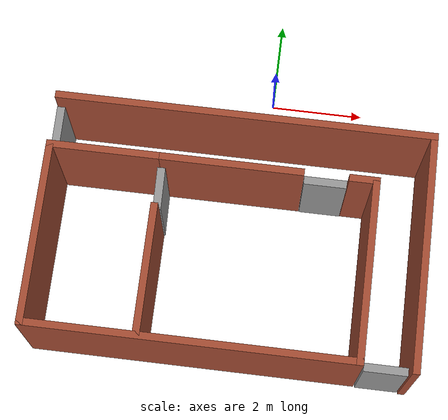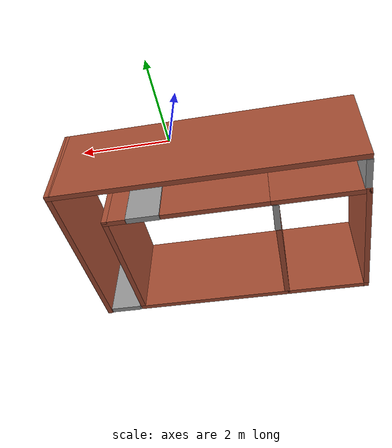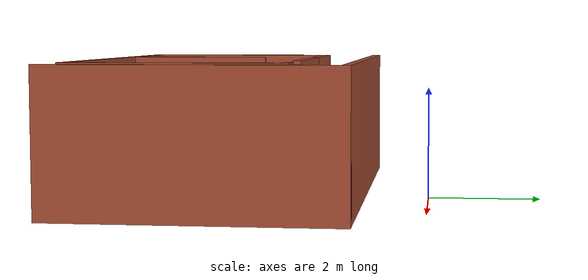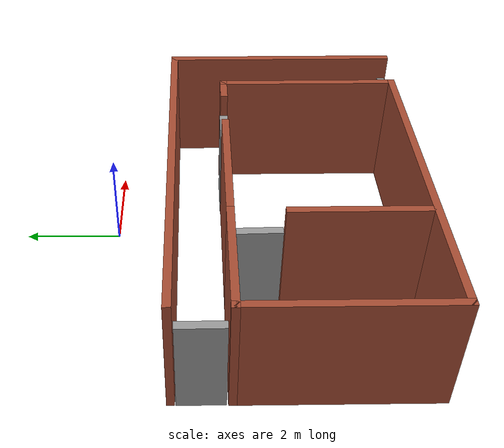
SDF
<?xml version='1.0'?>
<sdf version='1.6'>
  <model name='pro_house'>
    <pose frame=''>-0.522734 -3.655 0 0 -0 0</pose>
    <link name='Door_0'>
      <collision name='Door_0_Collision'>
        <geometry>
          <box>
            <size>0.9 0.17 2</size>
          </box>
        </geometry>
        <pose frame=''>0 0 1 0 -0 0</pose>
      </collision>
      <visual name='Door_0_Visual'>
        <pose frame=''>0 0 1 0 -0 0</pose>
        <geometry>
          <box>
            <size>0.9 0.17 2</size>
          </box>
        </geometry>
        <material>
          <script>
            <uri>file://media/materials/scripts/gazebo.material</uri>
            <name>Gazebo/Grey</name>
          </script>
        </material>
      </visual>
      <pose frame=''>-3.91101 1.90444 0 0 0 -1.56127</pose>
    </link>
    <link name='Door_1'>
      <collision name='Door_1_Collision'>
        <geometry>
          <box>
            <size>0.9 0.17 2</size>
          </box>
        </geometry>
        <pose frame=''>0 0 1 0 -0 0</pose>
      </collision>
      <visual name='Door_1_Visual'>
        <pose frame=''>0 0 1 0 -0 0</pose>
        <geometry>
          <box>
            <size>0.9 0.17 2</size>
          </box>
        </geometry>
        <material>
          <script>
            <uri>file://media/materials/scripts/gazebo.material</uri>
            <name>Gazebo/Grey</name>
          </script>
        </material>
      </visual>
      <pose frame=''>3.38521 -2.40442 0 0 -0 0</pose>
    </link>
    <link name='Door_2'>
      <collision name='Door_2_Collision'>
        <geometry>
          <box>
            <size>0.9 0.17 2</size>
          </box>
        </geometry>
        <pose frame=''>0 0 1 0 -0 0</pose>
      </collision>
      <visual name='Door_2_Visual'>
        <pose frame=''>0 0 1 0 -0 0</pose>
        <geometry>
          <box>
            <size>0.9 0.17 2</size>
          </box>
        </geometry>
        <material>
          <script>
            <uri>file://media/materials/scripts/gazebo.material</uri>
            <name>Gazebo/Grey</name>
          </script>
        </material>
      </visual>
      <pose frame=''>1.8045 1.35066 0 0 -0 0</pose>
    </link>
    <link name='Door_3'>
      <collision name='Door_3_Collision'>
        <geometry>
          <box>
            <size>0.9 0.17 2</size>
          </box>
        </geometry>
        <pose frame=''>0 0 1 0 -0 0</pose>
      </collision>
      <visual name='Door_3_Visual'>
        <pose frame=''>0 0 1 0 -0 0</pose>
        <geometry>
          <box>
            <size>0.9 0.17 2</size>
          </box>
        </geometry>
        <material>
          <script>
            <uri>file://media/materials/scripts/gazebo.material</uri>
            <name>Gazebo/Grey</name>
          </script>
        </material>
      </visual>
      <pose frame=''>-1.61389 0.811839 0 0 0 -1.54641</pose>
    </link>
    <link name='Wall_1'>
      <collision name='Wall_1_Collision'>
        <geometry>
          <box>
            <size>8 0.15 2.5</size>
          </box>
        </geometry>
        <pose frame=''>0 0 1.25 0 -0 0</pose>
      </collision>
      <visual name='Wall_1_Visual'>
        <pose frame=''>0 0 1.25 0 -0 0</pose>
        <geometry>
          <box>
            <size>8 0.15 2.5</size>
          </box>
        </geometry>
        <material>
          <script>
            <uri>file://media/materials/scripts/gazebo.material</uri>
            <name>Gazebo/Bricks</name>
          </script>
          <ambient>1 1 1 1</ambient>
        </material>
      </visual>
      <pose frame=''>0.007734 2.445 0 0 -0 0</pose>
    </link>
    <link name='Wall_14'>
      <collision name='Wall_14_Collision'>
        <geometry>
          <box>
            <size>6.91 0.15 2.5</size>
          </box>
        </geometry>
        <pose frame=''>0 0 1.25 0 -0 0</pose>
      </collision>
      <visual name='Wall_14_Visual'>
        <pose frame=''>0 0 1.25 0 -0 0</pose>
        <geometry>
          <box>
            <size>6.91 0.15 2.5</size>
          </box>
        </geometry>
        <material>
          <script>
            <uri>file://media/materials/scripts/gazebo.material</uri>
            <name>Gazebo/Bricks</name>
          </script>
          <ambient>1 1 1 1</ambient>
        </material>
      </visual>
      <pose frame=''>-0.552734 -2.40059 0 0 -0 0</pose>
    </link>
    <link name='Wall_16'>
      <collision name='Wall_16_Collision'>
        <geometry>
          <box>
            <size>2.5 0.15 2.5</size>
          </box>
        </geometry>
        <pose frame=''>0 0 1.25 0 -0 0</pose>
      </collision>
      <visual name='Wall_16_Visual'>
        <pose frame=''>0 0 1.25 0 -0 0</pose>
        <geometry>
          <box>
            <size>2.5 0.15 2.5</size>
          </box>
        </geometry>
        <material>
          <script>
            <uri>file://media/materials/scripts/gazebo.material</uri>
            <name>Gazebo/Bricks</name>
          </script>
          <ambient>1 1 1 1</ambient>
        </material>
      </visual>
      <pose frame=''>-2.75773 1.34941 0 0 -0 0</pose>
    </link>
    <link name='Wall_20'>
      <collision name='Wall_20_Collision'>
        <geometry>
          <box>
            <size>2.75 0.15 2.5</size>
          </box>
        </geometry>
        <pose frame=''>0 0 1.25 0 -0 0</pose>
      </collision>
      <visual name='Wall_20_Visual'>
        <pose frame=''>0 0 1.25 0 -0 0</pose>
        <geometry>
          <box>
            <size>2.75 0.15 2.5</size>
          </box>
        </geometry>
        <material>
          <script>
            <uri>file://media/materials/scripts/gazebo.material</uri>
            <name>Gazebo/Bricks</name>
          </script>
          <ambient>1 1 1 1</ambient>
        </material>
      </visual>
      <pose frame=''>-1.6154 -1.03172 0 0 0 -1.5708</pose>
    </link>
    <link name='Wall_22'>
      <collision name='Wall_22_Collision'>
        <geometry>
          <box>
            <size>3 0.15 2.5</size>
          </box>
        </geometry>
        <pose frame=''>0 0 1.25 0 -0 0</pose>
      </collision>
      <visual name='Wall_22_Visual'>
        <pose frame=''>0 0 1.25 0 -0 0</pose>
        <geometry>
          <box>
            <size>3 0.15 2.5</size>
          </box>
        </geometry>
        <material>
          <script>
            <uri>file://media/materials/scripts/gazebo.material</uri>
            <name>Gazebo/Bricks</name>
          </script>
          <ambient>1 1 1 1</ambient>
        </material>
      </visual>
      <pose frame=''>-0.157734 1.34941 0 0 -0 0</pose>
    </link>
    <link name='Wall_24'>
      <collision name='Wall_24_Collision'>
        <geometry>
          <box>
            <size>3.89673 0.15 2.5</size>
          </box>
        </geometry>
        <pose frame=''>0 0 1.25 0 -0 0</pose>
      </collision>
      <visual name='Wall_24_Visual'>
        <pose frame=''>0 0 1.25 0 -0 0</pose>
        <geometry>
          <box>
            <size>3.89673 0.15 2.5</size>
          </box>
        </geometry>
        <material>
          <script>
            <uri>file://media/materials/scripts/gazebo.material</uri>
            <name>Gazebo/Bricks</name>
          </script>
          <ambient>1 1 1 1</ambient>
        </material>
      </visual>
      <pose frame=''>2.82727 -0.527221 0 0 -0 1.5708</pose>
    </link>
    <link name='Wall_26'>
      <collision name='Wall_26_Collision'>
        <geometry>
          <box>
            <size>0.64 0.15 2.5</size>
          </box>
        </geometry>
        <pose frame=''>0 0 1.25 0 -0 0</pose>
      </collision>
      <visual name='Wall_26_Visual'>
        <pose frame=''>0 0 1.25 0 -0 0</pose>
        <geometry>
          <box>
            <size>0.64 0.15 2.5</size>
          </box>
        </geometry>
        <material>
          <script>
            <uri>file://media/materials/scripts/gazebo.material</uri>
            <name>Gazebo/Bricks</name>
          </script>
          <ambient>1 1 1 1</ambient>
        </material>
      </visual>
      <pose frame=''>2.58227 1.34614 0 0 -0 3.14159</pose>
    </link>
    <link name='Wall_3'>
      <collision name='Wall_3_Collision'>
        <geometry>
          <box>
            <size>5.04 0.15 2.5</size>
          </box>
        </geometry>
        <pose frame=''>0 0 1.25 0 -0 0</pose>
      </collision>
      <visual name='Wall_3_Visual'>
        <pose frame=''>0 0 1.25 0 -0 0</pose>
        <geometry>
          <box>
            <size>5.04 0.15 2.5</size>
          </box>
        </geometry>
        <material>
          <script>
            <uri>file://media/materials/scripts/gazebo.material</uri>
            <name>Gazebo/Bricks</name>
          </script>
          <ambient>1 1 1 1</ambient>
        </material>
      </visual>
      <pose frame=''>3.93273 0 0 0 0 -1.5708</pose>
    </link>
    <link name='Wall_9'>
      <collision name='Wall_9_Collision'>
        <geometry>
          <box>
            <size>3.9 0.15 2.5</size>
          </box>
        </geometry>
        <pose frame=''>0 0 1.25 0 -0 0</pose>
      </collision>
      <visual name='Wall_9_Visual'>
        <pose frame=''>0 0 1.25 0 -0 0</pose>
        <geometry>
          <box>
            <size>3.9 0.15 2.5</size>
          </box>
        </geometry>
        <material>
          <script>
            <uri>file://media/materials/scripts/gazebo.material</uri>
            <name>Gazebo/Bricks</name>
          </script>
          <ambient>1 1 1 1</ambient>
        </material>
      </visual>
      <pose frame=''>-3.93273 -0.525587 0 0 0 -1.5708</pose>
    </link>
    <static>1</static>
  </model>
</sdf>
